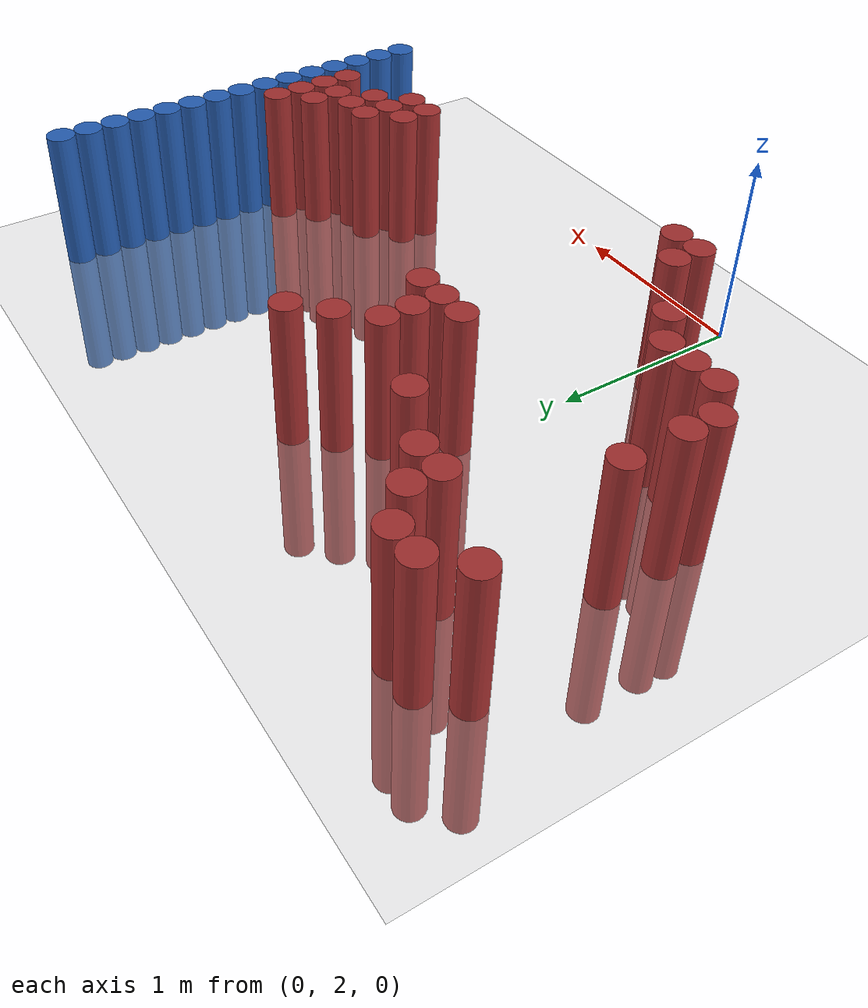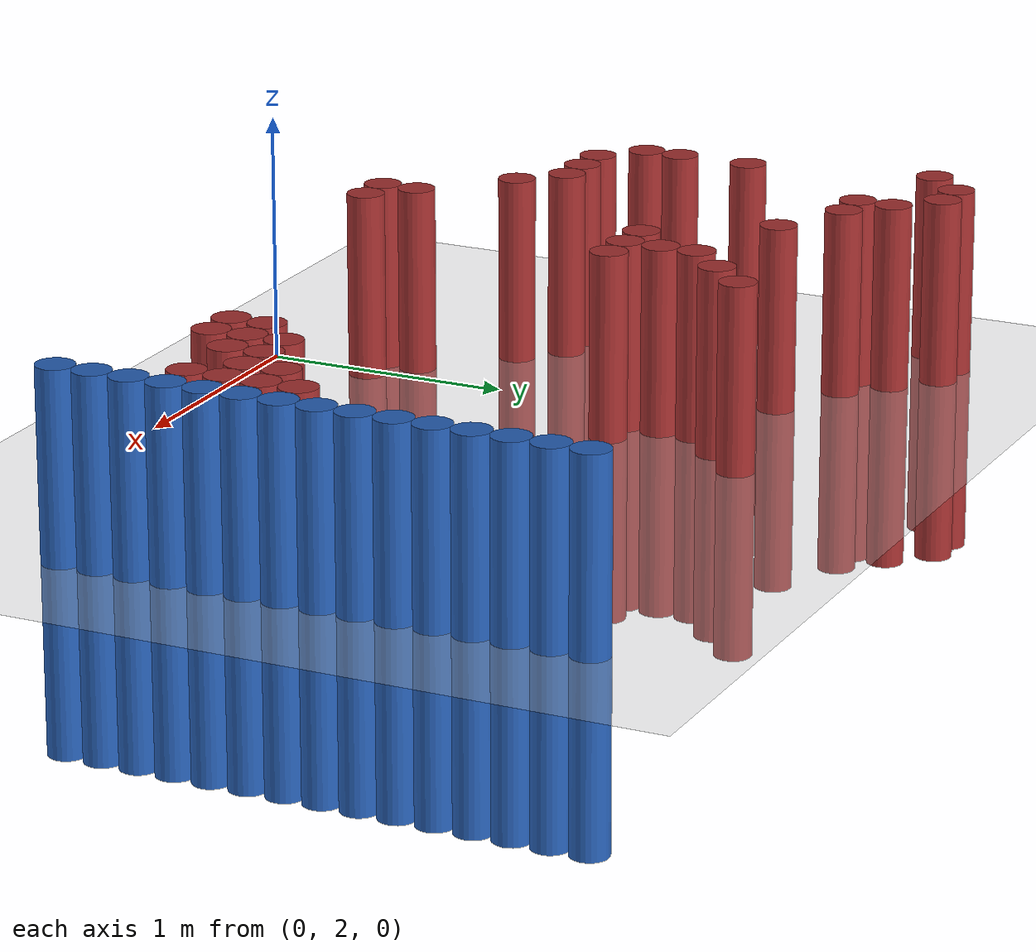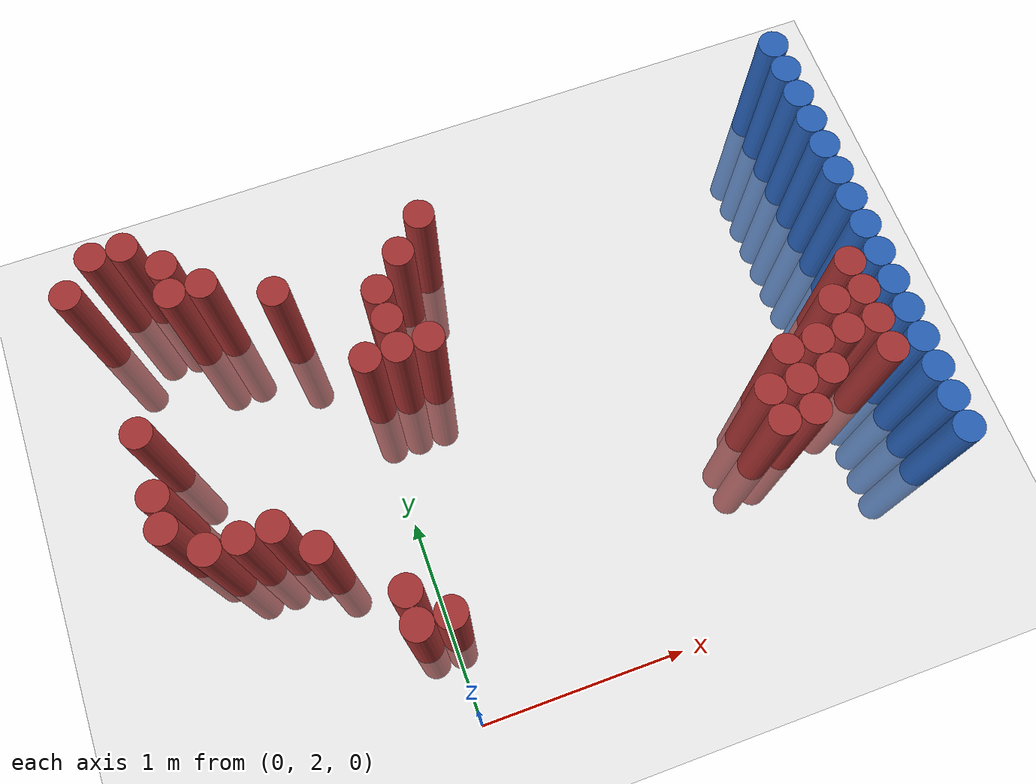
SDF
<sdf version="1.6">
 <world name="default">
  <model name="ground_plane">
   <static>1</static>
   <link name="link">
    <collision name="collision">
     <geometry><plane><normal>0 0 1</normal><size>100 100</size></plane></geometry>
     <surface><friction><ode><mu>100</mu><mu2>50</mu2></ode></friction></surface>
    </collision>
    <visual name="visual">
     <cast_shadows>0</cast_shadows>
     <geometry><plane><normal>0 0 1</normal><size>100 100</size></plane></geometry>
     <material>
      <script><uri>file://media/materials/scripts/gazebo.material</uri><name>Gazebo/Grey</name></script>
     </material>
    </visual>
   </link>
  </model>
  <model name="unit_cylinder_151">
   <static>1</static>
   <pose>-1.175000 4.375000 0.000000 0.000000 0.000000 0.000000</pose>
   <link name="link">
    <inertial>
     <mass>1</mass>
     <inertia><ixx>0.145833</ixx><ixy>0</ixy><ixz>0</ixz><iyy>0.145833</iyy><iyz>0</iyz><izz>0.125</izz></inertia>
    </inertial>
    <collision name="collision">
     <geometry><cylinder><radius>0.075000</radius><length>1.5</length></cylinder></geometry>
    </collision>
    <visual name="visual">
     <geometry><cylinder><radius>0.075000</radius><length>1.5</length></cylinder></geometry>
     <material>
      <ambient>0.648000 0.192000 0.192000 1</ambient>
      <diffuse>0.648000 0.192000 0.192000 1</diffuse>
     </material>
     <material>
      <script><name>Gazebo/Grey</name><uri>file://media/materials/scripts/gazebo.material</uri></script>
     </material>
    </visual>
   </link>
  </model>
  <model name="unit_cylinder_152">
   <static>1</static>
   <pose>-1.025000 3.175000 0.000000 0.000000 0.000000 0.000000</pose>
   <link name="link">
    <inertial>
     <mass>1</mass>
     <inertia><ixx>0.145833</ixx><ixy>0</ixy><ixz>0</ixz><iyy>0.145833</iyy><iyz>0</iyz><izz>0.125</izz></inertia>
    </inertial>
    <collision name="collision">
     <geometry><cylinder><radius>0.075000</radius><length>1.5</length></cylinder></geometry>
    </collision>
    <visual name="visual">
     <geometry><cylinder><radius>0.075000</radius><length>1.5</length></cylinder></geometry>
     <material>
      <ambient>0.648000 0.192000 0.192000 1</ambient>
      <diffuse>0.648000 0.192000 0.192000 1</diffuse>
     </material>
     <material>
      <script><name>Gazebo/Grey</name><uri>file://media/materials/scripts/gazebo.material</uri></script>
     </material>
    </visual>
   </link>
  </model>
  <model name="unit_cylinder_153">
   <static>1</static>
   <pose>-1.025000 3.325000 0.000000 0.000000 0.000000 0.000000</pose>
   <link name="link">
    <inertial>
     <mass>1</mass>
     <inertia><ixx>0.145833</ixx><ixy>0</ixy><ixz>0</ixz><iyy>0.145833</iyy><iyz>0</iyz><izz>0.125</izz></inertia>
    </inertial>
    <collision name="collision">
     <geometry><cylinder><radius>0.075000</radius><length>1.5</length></cylinder></geometry>
    </collision>
    <visual name="visual">
     <geometry><cylinder><radius>0.075000</radius><length>1.5</length></cylinder></geometry>
     <material>
      <ambient>0.648000 0.192000 0.192000 1</ambient>
      <diffuse>0.648000 0.192000 0.192000 1</diffuse>
     </material>
     <material>
      <script><name>Gazebo/Grey</name><uri>file://media/materials/scripts/gazebo.material</uri></script>
     </material>
    </visual>
   </link>
  </model>
  <model name="unit_cylinder_154">
   <static>1</static>
   <pose>-1.025000 3.625000 0.000000 0.000000 0.000000 0.000000</pose>
   <link name="link">
    <inertial>
     <mass>1</mass>
     <inertia><ixx>0.145833</ixx><ixy>0</ixy><ixz>0</ixz><iyy>0.145833</iyy><iyz>0</iyz><izz>0.125</izz></inertia>
    </inertial>
    <collision name="collision">
     <geometry><cylinder><radius>0.075000</radius><length>1.5</length></cylinder></geometry>
    </collision>
    <visual name="visual">
     <geometry><cylinder><radius>0.075000</radius><length>1.5</length></cylinder></geometry>
     <material>
      <ambient>0.648000 0.192000 0.192000 1</ambient>
      <diffuse>0.648000 0.192000 0.192000 1</diffuse>
     </material>
     <material>
      <script><name>Gazebo/Grey</name><uri>file://media/materials/scripts/gazebo.material</uri></script>
     </material>
    </visual>
   </link>
  </model>
  <model name="unit_cylinder_155">
   <static>1</static>
   <pose>-1.025000 4.525000 0.000000 0.000000 0.000000 0.000000</pose>
   <link name="link">
    <inertial>
     <mass>1</mass>
     <inertia><ixx>0.145833</ixx><ixy>0</ixy><ixz>0</ixz><iyy>0.145833</iyy><iyz>0</iyz><izz>0.125</izz></inertia>
    </inertial>
    <collision name="collision">
     <geometry><cylinder><radius>0.075000</radius><length>1.5</length></cylinder></geometry>
    </collision>
    <visual name="visual">
     <geometry><cylinder><radius>0.075000</radius><length>1.5</length></cylinder></geometry>
     <material>
      <ambient>0.648000 0.192000 0.192000 1</ambient>
      <diffuse>0.648000 0.192000 0.192000 1</diffuse>
     </material>
     <material>
      <script><name>Gazebo/Grey</name><uri>file://media/materials/scripts/gazebo.material</uri></script>
     </material>
    </visual>
   </link>
  </model>
  <model name="unit_cylinder_156">
   <static>1</static>
   <pose>-0.875000 3.025000 0.000000 0.000000 0.000000 0.000000</pose>
   <link name="link">
    <inertial>
     <mass>1</mass>
     <inertia><ixx>0.145833</ixx><ixy>0</ixy><ixz>0</ixz><iyy>0.145833</iyy><iyz>0</iyz><izz>0.125</izz></inertia>
    </inertial>
    <collision name="collision">
     <geometry><cylinder><radius>0.075000</radius><length>1.5</length></cylinder></geometry>
    </collision>
    <visual name="visual">
     <geometry><cylinder><radius>0.075000</radius><length>1.5</length></cylinder></geometry>
     <material>
      <ambient>0.648000 0.192000 0.192000 1</ambient>
      <diffuse>0.648000 0.192000 0.192000 1</diffuse>
     </material>
     <material>
      <script><name>Gazebo/Grey</name><uri>file://media/materials/scripts/gazebo.material</uri></script>
     </material>
    </visual>
   </link>
  </model>
  <model name="unit_cylinder_157">
   <static>1</static>
   <pose>-0.875000 4.525000 0.000000 0.000000 0.000000 0.000000</pose>
   <link name="link">
    <inertial>
     <mass>1</mass>
     <inertia><ixx>0.145833</ixx><ixy>0</ixy><ixz>0</ixz><iyy>0.145833</iyy><iyz>0</iyz><izz>0.125</izz></inertia>
    </inertial>
    <collision name="collision">
     <geometry><cylinder><radius>0.075000</radius><length>1.5</length></cylinder></geometry>
    </collision>
    <visual name="visual">
     <geometry><cylinder><radius>0.075000</radius><length>1.5</length></cylinder></geometry>
     <material>
      <ambient>0.648000 0.192000 0.192000 1</ambient>
      <diffuse>0.648000 0.192000 0.192000 1</diffuse>
     </material>
     <material>
      <script><name>Gazebo/Grey</name><uri>file://media/materials/scripts/gazebo.material</uri></script>
     </material>
    </visual>
   </link>
  </model>
  <model name="unit_cylinder_158">
   <static>1</static>
   <pose>-0.725000 3.025000 0.000000 0.000000 0.000000 0.000000</pose>
   <link name="link">
    <inertial>
     <mass>1</mass>
     <inertia><ixx>0.145833</ixx><ixy>0</ixy><ixz>0</ixz><iyy>0.145833</iyy><iyz>0</iyz><izz>0.125</izz></inertia>
    </inertial>
    <collision name="collision">
     <geometry><cylinder><radius>0.075000</radius><length>1.5</length></cylinder></geometry>
    </collision>
    <visual name="visual">
     <geometry><cylinder><radius>0.075000</radius><length>1.5</length></cylinder></geometry>
     <material>
      <ambient>0.648000 0.192000 0.192000 1</ambient>
      <diffuse>0.648000 0.192000 0.192000 1</diffuse>
     </material>
     <material>
      <script><name>Gazebo/Grey</name><uri>file://media/materials/scripts/gazebo.material</uri></script>
     </material>
    </visual>
   </link>
  </model>
  <model name="unit_cylinder_159">
   <static>1</static>
   <pose>-0.725000 4.225000 0.000000 0.000000 0.000000 0.000000</pose>
   <link name="link">
    <inertial>
     <mass>1</mass>
     <inertia><ixx>0.145833</ixx><ixy>0</ixy><ixz>0</ixz><iyy>0.145833</iyy><iyz>0</iyz><izz>0.125</izz></inertia>
    </inertial>
    <collision name="collision">
     <geometry><cylinder><radius>0.075000</radius><length>1.5</length></cylinder></geometry>
    </collision>
    <visual name="visual">
     <geometry><cylinder><radius>0.075000</radius><length>1.5</length></cylinder></geometry>
     <material>
      <ambient>0.648000 0.192000 0.192000 1</ambient>
      <diffuse>0.648000 0.192000 0.192000 1</diffuse>
     </material>
     <material>
      <script><name>Gazebo/Grey</name><uri>file://media/materials/scripts/gazebo.material</uri></script>
     </material>
    </visual>
   </link>
  </model>
  <model name="unit_cylinder_160">
   <static>1</static>
   <pose>-0.725000 4.375000 0.000000 0.000000 0.000000 0.000000</pose>
   <link name="link">
    <inertial>
     <mass>1</mass>
     <inertia><ixx>0.145833</ixx><ixy>0</ixy><ixz>0</ixz><iyy>0.145833</iyy><iyz>0</iyz><izz>0.125</izz></inertia>
    </inertial>
    <collision name="collision">
     <geometry><cylinder><radius>0.075000</radius><length>1.5</length></cylinder></geometry>
    </collision>
    <visual name="visual">
     <geometry><cylinder><radius>0.075000</radius><length>1.5</length></cylinder></geometry>
     <material>
      <ambient>0.648000 0.192000 0.192000 1</ambient>
      <diffuse>0.648000 0.192000 0.192000 1</diffuse>
     </material>
     <material>
      <script><name>Gazebo/Grey</name><uri>file://media/materials/scripts/gazebo.material</uri></script>
     </material>
    </visual>
   </link>
  </model>
  <model name="unit_cylinder_167">
   <static>1</static>
   <pose>-0.575000 3.025000 0.000000 0.000000 0.000000 0.000000</pose>
   <link name="link">
    <inertial>
     <mass>1</mass>
     <inertia><ixx>0.145833</ixx><ixy>0</ixy><ixz>0</ixz><iyy>0.145833</iyy><iyz>0</iyz><izz>0.125</izz></inertia>
    </inertial>
    <collision name="collision">
     <geometry><cylinder><radius>0.075000</radius><length>1.5</length></cylinder></geometry>
    </collision>
    <visual name="visual">
     <geometry><cylinder><radius>0.075000</radius><length>1.5</length></cylinder></geometry>
     <material>
      <ambient>0.648000 0.192000 0.192000 1</ambient>
      <diffuse>0.648000 0.192000 0.192000 1</diffuse>
     </material>
     <material>
      <script><name>Gazebo/Grey</name><uri>file://media/materials/scripts/gazebo.material</uri></script>
     </material>
    </visual>
   </link>
  </model>
  <model name="unit_cylinder_168">
   <static>1</static>
   <pose>-0.575000 4.225000 0.000000 0.000000 0.000000 0.000000</pose>
   <link name="link">
    <inertial>
     <mass>1</mass>
     <inertia><ixx>0.145833</ixx><ixy>0</ixy><ixz>0</ixz><iyy>0.145833</iyy><iyz>0</iyz><izz>0.125</izz></inertia>
    </inertial>
    <collision name="collision">
     <geometry><cylinder><radius>0.075000</radius><length>1.5</length></cylinder></geometry>
    </collision>
    <visual name="visual">
     <geometry><cylinder><radius>0.075000</radius><length>1.5</length></cylinder></geometry>
     <material>
      <ambient>0.648000 0.192000 0.192000 1</ambient>
      <diffuse>0.648000 0.192000 0.192000 1</diffuse>
     </material>
     <material>
      <script><name>Gazebo/Grey</name><uri>file://media/materials/scripts/gazebo.material</uri></script>
     </material>
    </visual>
   </link>
  </model>
  <model name="unit_cylinder_174">
   <static>1</static>
   <pose>-0.425000 2.875000 0.000000 0.000000 0.000000 0.000000</pose>
   <link name="link">
    <inertial>
     <mass>1</mass>
     <inertia><ixx>0.145833</ixx><ixy>0</ixy><ixz>0</ixz><iyy>0.145833</iyy><iyz>0</iyz><izz>0.125</izz></inertia>
    </inertial>
    <collision name="collision">
     <geometry><cylinder><radius>0.075000</radius><length>1.5</length></cylinder></geometry>
    </collision>
    <visual name="visual">
     <geometry><cylinder><radius>0.075000</radius><length>1.5</length></cylinder></geometry>
     <material>
      <ambient>0.648000 0.192000 0.192000 1</ambient>
      <diffuse>0.648000 0.192000 0.192000 1</diffuse>
     </material>
     <material>
      <script><name>Gazebo/Grey</name><uri>file://media/materials/scripts/gazebo.material</uri></script>
     </material>
    </visual>
   </link>
  </model>
  <model name="unit_cylinder_178">
   <static>1</static>
   <pose>-0.275000 4.075000 0.000000 0.000000 0.000000 0.000000</pose>
   <link name="link">
    <inertial>
     <mass>1</mass>
     <inertia><ixx>0.145833</ixx><ixy>0</ixy><ixz>0</ixz><iyy>0.145833</iyy><iyz>0</iyz><izz>0.125</izz></inertia>
    </inertial>
    <collision name="collision">
     <geometry><cylinder><radius>0.075000</radius><length>1.5</length></cylinder></geometry>
    </collision>
    <visual name="visual">
     <geometry><cylinder><radius>0.075000</radius><length>1.5</length></cylinder></geometry>
     <material>
      <ambient>0.648000 0.192000 0.192000 1</ambient>
      <diffuse>0.648000 0.192000 0.192000 1</diffuse>
     </material>
     <material>
      <script><name>Gazebo/Grey</name><uri>file://media/materials/scripts/gazebo.material</uri></script>
     </material>
    </visual>
   </link>
  </model>
  <model name="unit_cylinder_182">
   <static>1</static>
   <pose>-0.125000 2.425000 0.000000 0.000000 0.000000 0.000000</pose>
   <link name="link">
    <inertial>
     <mass>1</mass>
     <inertia><ixx>0.145833</ixx><ixy>0</ixy><ixz>0</ixz><iyy>0.145833</iyy><iyz>0</iyz><izz>0.125</izz></inertia>
    </inertial>
    <collision name="collision">
     <geometry><cylinder><radius>0.075000</radius><length>1.5</length></cylinder></geometry>
    </collision>
    <visual name="visual">
     <geometry><cylinder><radius>0.075000</radius><length>1.5</length></cylinder></geometry>
     <material>
      <ambient>0.648000 0.192000 0.192000 1</ambient>
      <diffuse>0.648000 0.192000 0.192000 1</diffuse>
     </material>
     <material>
      <script><name>Gazebo/Grey</name><uri>file://media/materials/scripts/gazebo.material</uri></script>
     </material>
    </visual>
   </link>
  </model>
  <model name="unit_cylinder_183">
   <static>1</static>
   <pose>-0.125000 2.575000 0.000000 0.000000 0.000000 0.000000</pose>
   <link name="link">
    <inertial>
     <mass>1</mass>
     <inertia><ixx>0.145833</ixx><ixy>0</ixy><ixz>0</ixz><iyy>0.145833</iyy><iyz>0</iyz><izz>0.125</izz></inertia>
    </inertial>
    <collision name="collision">
     <geometry><cylinder><radius>0.075000</radius><length>1.5</length></cylinder></geometry>
    </collision>
    <visual name="visual">
     <geometry><cylinder><radius>0.075000</radius><length>1.5</length></cylinder></geometry>
     <material>
      <ambient>0.648000 0.192000 0.192000 1</ambient>
      <diffuse>0.648000 0.192000 0.192000 1</diffuse>
     </material>
     <material>
      <script><name>Gazebo/Grey</name><uri>file://media/materials/scripts/gazebo.material</uri></script>
     </material>
    </visual>
   </link>
  </model>
  <model name="unit_cylinder_187">
   <static>1</static>
   <pose>0.025000 2.425000 0.000000 0.000000 0.000000 0.000000</pose>
   <link name="link">
    <inertial>
     <mass>1</mass>
     <inertia><ixx>0.145833</ixx><ixy>0</ixy><ixz>0</ixz><iyy>0.145833</iyy><iyz>0</iyz><izz>0.125</izz></inertia>
    </inertial>
    <collision name="collision">
     <geometry><cylinder><radius>0.075000</radius><length>1.5</length></cylinder></geometry>
    </collision>
    <visual name="visual">
     <geometry><cylinder><radius>0.075000</radius><length>1.5</length></cylinder></geometry>
     <material>
      <ambient>0.648000 0.192000 0.192000 1</ambient>
      <diffuse>0.648000 0.192000 0.192000 1</diffuse>
     </material>
     <material>
      <script><name>Gazebo/Grey</name><uri>file://media/materials/scripts/gazebo.material</uri></script>
     </material>
    </visual>
   </link>
  </model>
  <model name="unit_cylinder_188">
   <static>1</static>
   <pose>0.025000 3.625000 0.000000 0.000000 0.000000 0.000000</pose>
   <link name="link">
    <inertial>
     <mass>1</mass>
     <inertia><ixx>0.145833</ixx><ixy>0</ixy><ixz>0</ixz><iyy>0.145833</iyy><iyz>0</iyz><izz>0.125</izz></inertia>
    </inertial>
    <collision name="collision">
     <geometry><cylinder><radius>0.075000</radius><length>1.5</length></cylinder></geometry>
    </collision>
    <visual name="visual">
     <geometry><cylinder><radius>0.075000</radius><length>1.5</length></cylinder></geometry>
     <material>
      <ambient>0.648000 0.192000 0.192000 1</ambient>
      <diffuse>0.648000 0.192000 0.192000 1</diffuse>
     </material>
     <material>
      <script><name>Gazebo/Grey</name><uri>file://media/materials/scripts/gazebo.material</uri></script>
     </material>
    </visual>
   </link>
  </model>
  <model name="unit_cylinder_192">
   <static>1</static>
   <pose>0.175000 3.625000 0.000000 0.000000 0.000000 0.000000</pose>
   <link name="link">
    <inertial>
     <mass>1</mass>
     <inertia><ixx>0.145833</ixx><ixy>0</ixy><ixz>0</ixz><iyy>0.145833</iyy><iyz>0</iyz><izz>0.125</izz></inertia>
    </inertial>
    <collision name="collision">
     <geometry><cylinder><radius>0.075000</radius><length>1.5</length></cylinder></geometry>
    </collision>
    <visual name="visual">
     <geometry><cylinder><radius>0.075000</radius><length>1.5</length></cylinder></geometry>
     <material>
      <ambient>0.648000 0.192000 0.192000 1</ambient>
      <diffuse>0.648000 0.192000 0.192000 1</diffuse>
     </material>
     <material>
      <script><name>Gazebo/Grey</name><uri>file://media/materials/scripts/gazebo.material</uri></script>
     </material>
    </visual>
   </link>
  </model>
  <model name="unit_cylinder_193">
   <static>1</static>
   <pose>0.175000 3.775000 0.000000 0.000000 0.000000 0.000000</pose>
   <link name="link">
    <inertial>
     <mass>1</mass>
     <inertia><ixx>0.145833</ixx><ixy>0</ixy><ixz>0</ixz><iyy>0.145833</iyy><iyz>0</iyz><izz>0.125</izz></inertia>
    </inertial>
    <collision name="collision">
     <geometry><cylinder><radius>0.075000</radius><length>1.5</length></cylinder></geometry>
    </collision>
    <visual name="visual">
     <geometry><cylinder><radius>0.075000</radius><length>1.5</length></cylinder></geometry>
     <material>
      <ambient>0.648000 0.192000 0.192000 1</ambient>
      <diffuse>0.648000 0.192000 0.192000 1</diffuse>
     </material>
     <material>
      <script><name>Gazebo/Grey</name><uri>file://media/materials/scripts/gazebo.material</uri></script>
     </material>
    </visual>
   </link>
  </model>
  <model name="unit_cylinder_194">
   <static>1</static>
   <pose>0.175000 3.925000 0.000000 0.000000 0.000000 0.000000</pose>
   <link name="link">
    <inertial>
     <mass>1</mass>
     <inertia><ixx>0.145833</ixx><ixy>0</ixy><ixz>0</ixz><iyy>0.145833</iyy><iyz>0</iyz><izz>0.125</izz></inertia>
    </inertial>
    <collision name="collision">
     <geometry><cylinder><radius>0.075000</radius><length>1.5</length></cylinder></geometry>
    </collision>
    <visual name="visual">
     <geometry><cylinder><radius>0.075000</radius><length>1.5</length></cylinder></geometry>
     <material>
      <ambient>0.648000 0.192000 0.192000 1</ambient>
      <diffuse>0.648000 0.192000 0.192000 1</diffuse>
     </material>
     <material>
      <script><name>Gazebo/Grey</name><uri>file://media/materials/scripts/gazebo.material</uri></script>
     </material>
    </visual>
   </link>
  </model>
  <model name="unit_cylinder_195">
   <static>1</static>
   <pose>0.325000 3.625000 0.000000 0.000000 0.000000 0.000000</pose>
   <link name="link">
    <inertial>
     <mass>1</mass>
     <inertia><ixx>0.145833</ixx><ixy>0</ixy><ixz>0</ixz><iyy>0.145833</iyy><iyz>0</iyz><izz>0.125</izz></inertia>
    </inertial>
    <collision name="collision">
     <geometry><cylinder><radius>0.075000</radius><length>1.5</length></cylinder></geometry>
    </collision>
    <visual name="visual">
     <geometry><cylinder><radius>0.075000</radius><length>1.5</length></cylinder></geometry>
     <material>
      <ambient>0.648000 0.192000 0.192000 1</ambient>
      <diffuse>0.648000 0.192000 0.192000 1</diffuse>
     </material>
     <material>
      <script><name>Gazebo/Grey</name><uri>file://media/materials/scripts/gazebo.material</uri></script>
     </material>
    </visual>
   </link>
  </model>
  <model name="unit_cylinder_196">
   <static>1</static>
   <pose>0.325000 4.075000 0.000000 0.000000 0.000000 0.000000</pose>
   <link name="link">
    <inertial>
     <mass>1</mass>
     <inertia><ixx>0.145833</ixx><ixy>0</ixy><ixz>0</ixz><iyy>0.145833</iyy><iyz>0</iyz><izz>0.125</izz></inertia>
    </inertial>
    <collision name="collision">
     <geometry><cylinder><radius>0.075000</radius><length>1.5</length></cylinder></geometry>
    </collision>
    <visual name="visual">
     <geometry><cylinder><radius>0.075000</radius><length>1.5</length></cylinder></geometry>
     <material>
      <ambient>0.648000 0.192000 0.192000 1</ambient>
      <diffuse>0.648000 0.192000 0.192000 1</diffuse>
     </material>
     <material>
      <script><name>Gazebo/Grey</name><uri>file://media/materials/scripts/gazebo.material</uri></script>
     </material>
    </visual>
   </link>
  </model>
  <model name="unit_cylinder_197">
   <static>1</static>
   <pose>0.475000 4.225000 0.000000 0.000000 0.000000 0.000000</pose>
   <link name="link">
    <inertial>
     <mass>1</mass>
     <inertia><ixx>0.145833</ixx><ixy>0</ixy><ixz>0</ixz><iyy>0.145833</iyy><iyz>0</iyz><izz>0.125</izz></inertia>
    </inertial>
    <collision name="collision">
     <geometry><cylinder><radius>0.075000</radius><length>1.5</length></cylinder></geometry>
    </collision>
    <visual name="visual">
     <geometry><cylinder><radius>0.075000</radius><length>1.5</length></cylinder></geometry>
     <material>
      <ambient>0.648000 0.192000 0.192000 1</ambient>
      <diffuse>0.648000 0.192000 0.192000 1</diffuse>
     </material>
     <material>
      <script><name>Gazebo/Grey</name><uri>file://media/materials/scripts/gazebo.material</uri></script>
     </material>
    </visual>
   </link>
  </model>
  <model name="unit_cylinder_204">
   <static>1</static>
   <pose>1.675000 2.725000 0.000000 0.000000 0.000000 0.000000</pose>
   <link name="link">
    <inertial>
     <mass>1</mass>
     <inertia><ixx>0.145833</ixx><ixy>0</ixy><ixz>0</ixz><iyy>0.145833</iyy><iyz>0</iyz><izz>0.125</izz></inertia>
    </inertial>
    <collision name="collision">
     <geometry><cylinder><radius>0.075000</radius><length>1.5</length></cylinder></geometry>
    </collision>
    <visual name="visual">
     <geometry><cylinder><radius>0.075000</radius><length>1.5</length></cylinder></geometry>
     <material>
      <ambient>0.648000 0.192000 0.192000 1</ambient>
      <diffuse>0.648000 0.192000 0.192000 1</diffuse>
     </material>
     <material>
      <script><name>Gazebo/Grey</name><uri>file://media/materials/scripts/gazebo.material</uri></script>
     </material>
    </visual>
   </link>
  </model>
  <model name="unit_cylinder_205">
   <static>1</static>
   <pose>1.675000 2.875000 0.000000 0.000000 0.000000 0.000000</pose>
   <link name="link">
    <inertial>
     <mass>1</mass>
     <inertia><ixx>0.145833</ixx><ixy>0</ixy><ixz>0</ixz><iyy>0.145833</iyy><iyz>0</iyz><izz>0.125</izz></inertia>
    </inertial>
    <collision name="collision">
     <geometry><cylinder><radius>0.075000</radius><length>1.5</length></cylinder></geometry>
    </collision>
    <visual name="visual">
     <geometry><cylinder><radius>0.075000</radius><length>1.5</length></cylinder></geometry>
     <material>
      <ambient>0.648000 0.192000 0.192000 1</ambient>
      <diffuse>0.648000 0.192000 0.192000 1</diffuse>
     </material>
     <material>
      <script><name>Gazebo/Grey</name><uri>file://media/materials/scripts/gazebo.material</uri></script>
     </material>
    </visual>
   </link>
  </model>
  <model name="unit_cylinder_206">
   <static>1</static>
   <pose>1.825000 2.725000 0.000000 0.000000 0.000000 0.000000</pose>
   <link name="link">
    <inertial>
     <mass>1</mass>
     <inertia><ixx>0.145833</ixx><ixy>0</ixy><ixz>0</ixz><iyy>0.145833</iyy><iyz>0</iyz><izz>0.125</izz></inertia>
    </inertial>
    <collision name="collision">
     <geometry><cylinder><radius>0.075000</radius><length>1.5</length></cylinder></geometry>
    </collision>
    <visual name="visual">
     <geometry><cylinder><radius>0.075000</radius><length>1.5</length></cylinder></geometry>
     <material>
      <ambient>0.648000 0.192000 0.192000 1</ambient>
      <diffuse>0.648000 0.192000 0.192000 1</diffuse>
     </material>
     <material>
      <script><name>Gazebo/Grey</name><uri>file://media/materials/scripts/gazebo.material</uri></script>
     </material>
    </visual>
   </link>
  </model>
  <model name="unit_cylinder_207">
   <static>1</static>
   <pose>1.825000 2.875000 0.000000 0.000000 0.000000 0.000000</pose>
   <link name="link">
    <inertial>
     <mass>1</mass>
     <inertia><ixx>0.145833</ixx><ixy>0</ixy><ixz>0</ixz><iyy>0.145833</iyy><iyz>0</iyz><izz>0.125</izz></inertia>
    </inertial>
    <collision name="collision">
     <geometry><cylinder><radius>0.075000</radius><length>1.5</length></cylinder></geometry>
    </collision>
    <visual name="visual">
     <geometry><cylinder><radius>0.075000</radius><length>1.5</length></cylinder></geometry>
     <material>
      <ambient>0.648000 0.192000 0.192000 1</ambient>
      <diffuse>0.648000 0.192000 0.192000 1</diffuse>
     </material>
     <material>
      <script><name>Gazebo/Grey</name><uri>file://media/materials/scripts/gazebo.material</uri></script>
     </material>
    </visual>
   </link>
  </model>
  <model name="unit_cylinder_208">
   <static>1</static>
   <pose>1.825000 3.025000 0.000000 0.000000 0.000000 0.000000</pose>
   <link name="link">
    <inertial>
     <mass>1</mass>
     <inertia><ixx>0.145833</ixx><ixy>0</ixy><ixz>0</ixz><iyy>0.145833</iyy><iyz>0</iyz><izz>0.125</izz></inertia>
    </inertial>
    <collision name="collision">
     <geometry><cylinder><radius>0.075000</radius><length>1.5</length></cylinder></geometry>
    </collision>
    <visual name="visual">
     <geometry><cylinder><radius>0.075000</radius><length>1.5</length></cylinder></geometry>
     <material>
      <ambient>0.648000 0.192000 0.192000 1</ambient>
      <diffuse>0.648000 0.192000 0.192000 1</diffuse>
     </material>
     <material>
      <script><name>Gazebo/Grey</name><uri>file://media/materials/scripts/gazebo.material</uri></script>
     </material>
    </visual>
   </link>
  </model>
  <model name="unit_cylinder_211">
   <static>1</static>
   <pose>1.975000 2.875000 0.000000 0.000000 0.000000 0.000000</pose>
   <link name="link">
    <inertial>
     <mass>1</mass>
     <inertia><ixx>0.145833</ixx><ixy>0</ixy><ixz>0</ixz><iyy>0.145833</iyy><iyz>0</iyz><izz>0.125</izz></inertia>
    </inertial>
    <collision name="collision">
     <geometry><cylinder><radius>0.075000</radius><length>1.5</length></cylinder></geometry>
    </collision>
    <visual name="visual">
     <geometry><cylinder><radius>0.075000</radius><length>1.5</length></cylinder></geometry>
     <material>
      <ambient>0.648000 0.192000 0.192000 1</ambient>
      <diffuse>0.648000 0.192000 0.192000 1</diffuse>
     </material>
     <material>
      <script><name>Gazebo/Grey</name><uri>file://media/materials/scripts/gazebo.material</uri></script>
     </material>
    </visual>
   </link>
  </model>
  <model name="unit_cylinder_212">
   <static>1</static>
   <pose>1.975000 3.025000 0.000000 0.000000 0.000000 0.000000</pose>
   <link name="link">
    <inertial>
     <mass>1</mass>
     <inertia><ixx>0.145833</ixx><ixy>0</ixy><ixz>0</ixz><iyy>0.145833</iyy><iyz>0</iyz><izz>0.125</izz></inertia>
    </inertial>
    <collision name="collision">
     <geometry><cylinder><radius>0.075000</radius><length>1.5</length></cylinder></geometry>
    </collision>
    <visual name="visual">
     <geometry><cylinder><radius>0.075000</radius><length>1.5</length></cylinder></geometry>
     <material>
      <ambient>0.648000 0.192000 0.192000 1</ambient>
      <diffuse>0.648000 0.192000 0.192000 1</diffuse>
     </material>
     <material>
      <script><name>Gazebo/Grey</name><uri>file://media/materials/scripts/gazebo.material</uri></script>
     </material>
    </visual>
   </link>
  </model>
  <model name="unit_cylinder_215">
   <static>1</static>
   <pose>2.125000 3.025000 0.000000 0.000000 0.000000 0.000000</pose>
   <link name="link">
    <inertial>
     <mass>1</mass>
     <inertia><ixx>0.145833</ixx><ixy>0</ixy><ixz>0</ixz><iyy>0.145833</iyy><iyz>0</iyz><izz>0.125</izz></inertia>
    </inertial>
    <collision name="collision">
     <geometry><cylinder><radius>0.075000</radius><length>1.5</length></cylinder></geometry>
    </collision>
    <visual name="visual">
     <geometry><cylinder><radius>0.075000</radius><length>1.5</length></cylinder></geometry>
     <material>
      <ambient>0.648000 0.192000 0.192000 1</ambient>
      <diffuse>0.648000 0.192000 0.192000 1</diffuse>
     </material>
     <material>
      <script><name>Gazebo/Grey</name><uri>file://media/materials/scripts/gazebo.material</uri></script>
     </material>
    </visual>
   </link>
  </model>
  <model name="unit_cylinder_216">
   <static>1</static>
   <pose>2.125000 3.175000 0.000000 0.000000 0.000000 0.000000</pose>
   <link name="link">
    <inertial>
     <mass>1</mass>
     <inertia><ixx>0.145833</ixx><ixy>0</ixy><ixz>0</ixz><iyy>0.145833</iyy><iyz>0</iyz><izz>0.125</izz></inertia>
    </inertial>
    <collision name="collision">
     <geometry><cylinder><radius>0.075000</radius><length>1.5</length></cylinder></geometry>
    </collision>
    <visual name="visual">
     <geometry><cylinder><radius>0.075000</radius><length>1.5</length></cylinder></geometry>
     <material>
      <ambient>0.648000 0.192000 0.192000 1</ambient>
      <diffuse>0.648000 0.192000 0.192000 1</diffuse>
     </material>
     <material>
      <script><name>Gazebo/Grey</name><uri>file://media/materials/scripts/gazebo.material</uri></script>
     </material>
    </visual>
   </link>
  </model>
  <model name="unit_cylinder_227">
   <static>1</static>
   <pose>2.275000 2.875000 0.000000 0.000000 0.000000 0.000000</pose>
   <link name="link">
    <inertial>
     <mass>1</mass>
     <inertia><ixx>0.145833</ixx><ixy>0</ixy><ixz>0</ixz><iyy>0.145833</iyy><iyz>0</iyz><izz>0.125</izz></inertia>
    </inertial>
    <collision name="collision">
     <geometry><cylinder><radius>0.075000</radius><length>1.5</length></cylinder></geometry>
    </collision>
    <visual name="visual">
     <geometry><cylinder><radius>0.075000</radius><length>1.5</length></cylinder></geometry>
     <material>
      <ambient>0.648000 0.192000 0.192000 1</ambient>
      <diffuse>0.648000 0.192000 0.192000 1</diffuse>
     </material>
     <material>
      <script><name>Gazebo/Grey</name><uri>file://media/materials/scripts/gazebo.material</uri></script>
     </material>
    </visual>
   </link>
  </model>
  <model name="unit_cylinder_228">
   <static>1</static>
   <pose>2.275000 3.025000 0.000000 0.000000 0.000000 0.000000</pose>
   <link name="link">
    <inertial>
     <mass>1</mass>
     <inertia><ixx>0.145833</ixx><ixy>0</ixy><ixz>0</ixz><iyy>0.145833</iyy><iyz>0</iyz><izz>0.125</izz></inertia>
    </inertial>
    <collision name="collision">
     <geometry><cylinder><radius>0.075000</radius><length>1.5</length></cylinder></geometry>
    </collision>
    <visual name="visual">
     <geometry><cylinder><radius>0.075000</radius><length>1.5</length></cylinder></geometry>
     <material>
      <ambient>0.648000 0.192000 0.192000 1</ambient>
      <diffuse>0.648000 0.192000 0.192000 1</diffuse>
     </material>
     <material>
      <script><name>Gazebo/Grey</name><uri>file://media/materials/scripts/gazebo.material</uri></script>
     </material>
    </visual>
   </link>
  </model>
  <model name="unit_cylinder_229">
   <static>1</static>
   <pose>2.275000 3.175000 0.000000 0.000000 0.000000 0.000000</pose>
   <link name="link">
    <inertial>
     <mass>1</mass>
     <inertia><ixx>0.145833</ixx><ixy>0</ixy><ixz>0</ixz><iyy>0.145833</iyy><iyz>0</iyz><izz>0.125</izz></inertia>
    </inertial>
    <collision name="collision">
     <geometry><cylinder><radius>0.075000</radius><length>1.5</length></cylinder></geometry>
    </collision>
    <visual name="visual">
     <geometry><cylinder><radius>0.075000</radius><length>1.5</length></cylinder></geometry>
     <material>
      <ambient>0.648000 0.192000 0.192000 1</ambient>
      <diffuse>0.648000 0.192000 0.192000 1</diffuse>
     </material>
     <material>
      <script><name>Gazebo/Grey</name><uri>file://media/materials/scripts/gazebo.material</uri></script>
     </material>
    </visual>
   </link>
  </model>
  <model name="unit_cylinder_230">
   <static>1</static>
   <pose>2.275000 3.325000 0.000000 0.000000 0.000000 0.000000</pose>
   <link name="link">
    <inertial>
     <mass>1</mass>
     <inertia><ixx>0.145833</ixx><ixy>0</ixy><ixz>0</ixz><iyy>0.145833</iyy><iyz>0</iyz><izz>0.125</izz></inertia>
    </inertial>
    <collision name="collision">
     <geometry><cylinder><radius>0.075000</radius><length>1.5</length></cylinder></geometry>
    </collision>
    <visual name="visual">
     <geometry><cylinder><radius>0.075000</radius><length>1.5</length></cylinder></geometry>
     <material>
      <ambient>0.648000 0.192000 0.192000 1</ambient>
      <diffuse>0.648000 0.192000 0.192000 1</diffuse>
     </material>
     <material>
      <script><name>Gazebo/Grey</name><uri>file://media/materials/scripts/gazebo.material</uri></script>
     </material>
    </visual>
   </link>
  </model>
  <model name="unit_cylinder_246">
   <static>1</static>
   <pose>2.425000 2.425000 0.000000 0.000000 0.000000 0.000000</pose>
   <link name="link">
    <inertial>
     <mass>1</mass>
     <inertia><ixx>0.145833</ixx><ixy>0</ixy><ixz>0</ixz><iyy>0.145833</iyy><iyz>0</iyz><izz>0.125</izz></inertia>
    </inertial>
    <collision name="collision">
     <geometry><cylinder><radius>0.075000</radius><length>1.5</length></cylinder></geometry>
    </collision>
    <visual name="visual">
     <geometry><cylinder><radius>0.075000</radius><length>1.5</length></cylinder></geometry>
     <material>
      <ambient>0.152000 0.379000 0.720000 1</ambient>
      <diffuse>0.152000 0.379000 0.720000 1</diffuse>
     </material>
     <material>
      <script><name>Gazebo/Grey</name><uri>file://media/materials/scripts/gazebo.material</uri></script>
     </material>
    </visual>
   </link>
  </model>
  <model name="unit_cylinder_247">
   <static>1</static>
   <pose>2.425000 2.575000 0.000000 0.000000 0.000000 0.000000</pose>
   <link name="link">
    <inertial>
     <mass>1</mass>
     <inertia><ixx>0.145833</ixx><ixy>0</ixy><ixz>0</ixz><iyy>0.145833</iyy><iyz>0</iyz><izz>0.125</izz></inertia>
    </inertial>
    <collision name="collision">
     <geometry><cylinder><radius>0.075000</radius><length>1.5</length></cylinder></geometry>
    </collision>
    <visual name="visual">
     <geometry><cylinder><radius>0.075000</radius><length>1.5</length></cylinder></geometry>
     <material>
      <ambient>0.152000 0.379000 0.720000 1</ambient>
      <diffuse>0.152000 0.379000 0.720000 1</diffuse>
     </material>
     <material>
      <script><name>Gazebo/Grey</name><uri>file://media/materials/scripts/gazebo.material</uri></script>
     </material>
    </visual>
   </link>
  </model>
  <model name="unit_cylinder_248">
   <static>1</static>
   <pose>2.425000 2.725000 0.000000 0.000000 0.000000 0.000000</pose>
   <link name="link">
    <inertial>
     <mass>1</mass>
     <inertia><ixx>0.145833</ixx><ixy>0</ixy><ixz>0</ixz><iyy>0.145833</iyy><iyz>0</iyz><izz>0.125</izz></inertia>
    </inertial>
    <collision name="collision">
     <geometry><cylinder><radius>0.075000</radius><length>1.5</length></cylinder></geometry>
    </collision>
    <visual name="visual">
     <geometry><cylinder><radius>0.075000</radius><length>1.5</length></cylinder></geometry>
     <material>
      <ambient>0.152000 0.379000 0.720000 1</ambient>
      <diffuse>0.152000 0.379000 0.720000 1</diffuse>
     </material>
     <material>
      <script><name>Gazebo/Grey</name><uri>file://media/materials/scripts/gazebo.material</uri></script>
     </material>
    </visual>
   </link>
  </model>
  <model name="unit_cylinder_249">
   <static>1</static>
   <pose>2.425000 2.875000 0.000000 0.000000 0.000000 0.000000</pose>
   <link name="link">
    <inertial>
     <mass>1</mass>
     <inertia><ixx>0.145833</ixx><ixy>0</ixy><ixz>0</ixz><iyy>0.145833</iyy><iyz>0</iyz><izz>0.125</izz></inertia>
    </inertial>
    <collision name="collision">
     <geometry><cylinder><radius>0.075000</radius><length>1.5</length></cylinder></geometry>
    </collision>
    <visual name="visual">
     <geometry><cylinder><radius>0.075000</radius><length>1.5</length></cylinder></geometry>
     <material>
      <ambient>0.152000 0.379000 0.720000 1</ambient>
      <diffuse>0.152000 0.379000 0.720000 1</diffuse>
     </material>
     <material>
      <script><name>Gazebo/Grey</name><uri>file://media/materials/scripts/gazebo.material</uri></script>
     </material>
    </visual>
   </link>
  </model>
  <model name="unit_cylinder_250">
   <static>1</static>
   <pose>2.425000 3.025000 0.000000 0.000000 0.000000 0.000000</pose>
   <link name="link">
    <inertial>
     <mass>1</mass>
     <inertia><ixx>0.145833</ixx><ixy>0</ixy><ixz>0</ixz><iyy>0.145833</iyy><iyz>0</iyz><izz>0.125</izz></inertia>
    </inertial>
    <collision name="collision">
     <geometry><cylinder><radius>0.075000</radius><length>1.5</length></cylinder></geometry>
    </collision>
    <visual name="visual">
     <geometry><cylinder><radius>0.075000</radius><length>1.5</length></cylinder></geometry>
     <material>
      <ambient>0.152000 0.379000 0.720000 1</ambient>
      <diffuse>0.152000 0.379000 0.720000 1</diffuse>
     </material>
     <material>
      <script><name>Gazebo/Grey</name><uri>file://media/materials/scripts/gazebo.material</uri></script>
     </material>
    </visual>
   </link>
  </model>
  <model name="unit_cylinder_251">
   <static>1</static>
   <pose>2.425000 3.175000 0.000000 0.000000 0.000000 0.000000</pose>
   <link name="link">
    <inertial>
     <mass>1</mass>
     <inertia><ixx>0.145833</ixx><ixy>0</ixy><ixz>0</ixz><iyy>0.145833</iyy><iyz>0</iyz><izz>0.125</izz></inertia>
    </inertial>
    <collision name="collision">
     <geometry><cylinder><radius>0.075000</radius><length>1.5</length></cylinder></geometry>
    </collision>
    <visual name="visual">
     <geometry><cylinder><radius>0.075000</radius><length>1.5</length></cylinder></geometry>
     <material>
      <ambient>0.152000 0.379000 0.720000 1</ambient>
      <diffuse>0.152000 0.379000 0.720000 1</diffuse>
     </material>
     <material>
      <script><name>Gazebo/Grey</name><uri>file://media/materials/scripts/gazebo.material</uri></script>
     </material>
    </visual>
   </link>
  </model>
  <model name="unit_cylinder_252">
   <static>1</static>
   <pose>2.425000 3.325000 0.000000 0.000000 0.000000 0.000000</pose>
   <link name="link">
    <inertial>
     <mass>1</mass>
     <inertia><ixx>0.145833</ixx><ixy>0</ixy><ixz>0</ixz><iyy>0.145833</iyy><iyz>0</iyz><izz>0.125</izz></inertia>
    </inertial>
    <collision name="collision">
     <geometry><cylinder><radius>0.075000</radius><length>1.5</length></cylinder></geometry>
    </collision>
    <visual name="visual">
     <geometry><cylinder><radius>0.075000</radius><length>1.5</length></cylinder></geometry>
     <material>
      <ambient>0.152000 0.379000 0.720000 1</ambient>
      <diffuse>0.152000 0.379000 0.720000 1</diffuse>
     </material>
     <material>
      <script><name>Gazebo/Grey</name><uri>file://media/materials/scripts/gazebo.material</uri></script>
     </material>
    </visual>
   </link>
  </model>
  <model name="unit_cylinder_253">
   <static>1</static>
   <pose>2.425000 3.475000 0.000000 0.000000 0.000000 0.000000</pose>
   <link name="link">
    <inertial>
     <mass>1</mass>
     <inertia><ixx>0.145833</ixx><ixy>0</ixy><ixz>0</ixz><iyy>0.145833</iyy><iyz>0</iyz><izz>0.125</izz></inertia>
    </inertial>
    <collision name="collision">
     <geometry><cylinder><radius>0.075000</radius><length>1.5</length></cylinder></geometry>
    </collision>
    <visual name="visual">
     <geometry><cylinder><radius>0.075000</radius><length>1.5</length></cylinder></geometry>
     <material>
      <ambient>0.152000 0.379000 0.720000 1</ambient>
      <diffuse>0.152000 0.379000 0.720000 1</diffuse>
     </material>
     <material>
      <script><name>Gazebo/Grey</name><uri>file://media/materials/scripts/gazebo.material</uri></script>
     </material>
    </visual>
   </link>
  </model>
  <model name="unit_cylinder_254">
   <static>1</static>
   <pose>2.425000 3.625000 0.000000 0.000000 0.000000 0.000000</pose>
   <link name="link">
    <inertial>
     <mass>1</mass>
     <inertia><ixx>0.145833</ixx><ixy>0</ixy><ixz>0</ixz><iyy>0.145833</iyy><iyz>0</iyz><izz>0.125</izz></inertia>
    </inertial>
    <collision name="collision">
     <geometry><cylinder><radius>0.075000</radius><length>1.5</length></cylinder></geometry>
    </collision>
    <visual name="visual">
     <geometry><cylinder><radius>0.075000</radius><length>1.5</length></cylinder></geometry>
     <material>
      <ambient>0.152000 0.379000 0.720000 1</ambient>
      <diffuse>0.152000 0.379000 0.720000 1</diffuse>
     </material>
     <material>
      <script><name>Gazebo/Grey</name><uri>file://media/materials/scripts/gazebo.material</uri></script>
     </material>
    </visual>
   </link>
  </model>
  <model name="unit_cylinder_255">
   <static>1</static>
   <pose>2.425000 3.775000 0.000000 0.000000 0.000000 0.000000</pose>
   <link name="link">
    <inertial>
     <mass>1</mass>
     <inertia><ixx>0.145833</ixx><ixy>0</ixy><ixz>0</ixz><iyy>0.145833</iyy><iyz>0</iyz><izz>0.125</izz></inertia>
    </inertial>
    <collision name="collision">
     <geometry><cylinder><radius>0.075000</radius><length>1.5</length></cylinder></geometry>
    </collision>
    <visual name="visual">
     <geometry><cylinder><radius>0.075000</radius><length>1.5</length></cylinder></geometry>
     <material>
      <ambient>0.152000 0.379000 0.720000 1</ambient>
      <diffuse>0.152000 0.379000 0.720000 1</diffuse>
     </material>
     <material>
      <script><name>Gazebo/Grey</name><uri>file://media/materials/scripts/gazebo.material</uri></script>
     </material>
    </visual>
   </link>
  </model>
  <model name="unit_cylinder_256">
   <static>1</static>
   <pose>2.425000 3.925000 0.000000 0.000000 0.000000 0.000000</pose>
   <link name="link">
    <inertial>
     <mass>1</mass>
     <inertia><ixx>0.145833</ixx><ixy>0</ixy><ixz>0</ixz><iyy>0.145833</iyy><iyz>0</iyz><izz>0.125</izz></inertia>
    </inertial>
    <collision name="collision">
     <geometry><cylinder><radius>0.075000</radius><length>1.5</length></cylinder></geometry>
    </collision>
    <visual name="visual">
     <geometry><cylinder><radius>0.075000</radius><length>1.5</length></cylinder></geometry>
     <material>
      <ambient>0.152000 0.379000 0.720000 1</ambient>
      <diffuse>0.152000 0.379000 0.720000 1</diffuse>
     </material>
     <material>
      <script><name>Gazebo/Grey</name><uri>file://media/materials/scripts/gazebo.material</uri></script>
     </material>
    </visual>
   </link>
  </model>
  <model name="unit_cylinder_257">
   <static>1</static>
   <pose>2.425000 4.075000 0.000000 0.000000 0.000000 0.000000</pose>
   <link name="link">
    <inertial>
     <mass>1</mass>
     <inertia><ixx>0.145833</ixx><ixy>0</ixy><ixz>0</ixz><iyy>0.145833</iyy><iyz>0</iyz><izz>0.125</izz></inertia>
    </inertial>
    <collision name="collision">
     <geometry><cylinder><radius>0.075000</radius><length>1.5</length></cylinder></geometry>
    </collision>
    <visual name="visual">
     <geometry><cylinder><radius>0.075000</radius><length>1.5</length></cylinder></geometry>
     <material>
      <ambient>0.152000 0.379000 0.720000 1</ambient>
      <diffuse>0.152000 0.379000 0.720000 1</diffuse>
     </material>
     <material>
      <script><name>Gazebo/Grey</name><uri>file://media/materials/scripts/gazebo.material</uri></script>
     </material>
    </visual>
   </link>
  </model>
  <model name="unit_cylinder_258">
   <static>1</static>
   <pose>2.425000 4.225000 0.000000 0.000000 0.000000 0.000000</pose>
   <link name="link">
    <inertial>
     <mass>1</mass>
     <inertia><ixx>0.145833</ixx><ixy>0</ixy><ixz>0</ixz><iyy>0.145833</iyy><iyz>0</iyz><izz>0.125</izz></inertia>
    </inertial>
    <collision name="collision">
     <geometry><cylinder><radius>0.075000</radius><length>1.5</length></cylinder></geometry>
    </collision>
    <visual name="visual">
     <geometry><cylinder><radius>0.075000</radius><length>1.5</length></cylinder></geometry>
     <material>
      <ambient>0.152000 0.379000 0.720000 1</ambient>
      <diffuse>0.152000 0.379000 0.720000 1</diffuse>
     </material>
     <material>
      <script><name>Gazebo/Grey</name><uri>file://media/materials/scripts/gazebo.material</uri></script>
     </material>
    </visual>
   </link>
  </model>
  <model name="unit_cylinder_259">
   <static>1</static>
   <pose>2.425000 4.375000 0.000000 0.000000 0.000000 0.000000</pose>
   <link name="link">
    <inertial>
     <mass>1</mass>
     <inertia><ixx>0.145833</ixx><ixy>0</ixy><ixz>0</ixz><iyy>0.145833</iyy><iyz>0</iyz><izz>0.125</izz></inertia>
    </inertial>
    <collision name="collision">
     <geometry><cylinder><radius>0.075000</radius><length>1.5</length></cylinder></geometry>
    </collision>
    <visual name="visual">
     <geometry><cylinder><radius>0.075000</radius><length>1.5</length></cylinder></geometry>
     <material>
      <ambient>0.152000 0.379000 0.720000 1</ambient>
      <diffuse>0.152000 0.379000 0.720000 1</diffuse>
     </material>
     <material>
      <script><name>Gazebo/Grey</name><uri>file://media/materials/scripts/gazebo.material</uri></script>
     </material>
    </visual>
   </link>
  </model>
  <model name="unit_cylinder_260">
   <static>1</static>
   <pose>2.425000 4.525000 0.000000 0.000000 0.000000 0.000000</pose>
   <link name="link">
    <inertial>
     <mass>1</mass>
     <inertia><ixx>0.145833</ixx><ixy>0</ixy><ixz>0</ixz><iyy>0.145833</iyy><iyz>0</iyz><izz>0.125</izz></inertia>
    </inertial>
    <collision name="collision">
     <geometry><cylinder><radius>0.075000</radius><length>1.5</length></cylinder></geometry>
    </collision>
    <visual name="visual">
     <geometry><cylinder><radius>0.075000</radius><length>1.5</length></cylinder></geometry>
     <material>
      <ambient>0.152000 0.379000 0.720000 1</ambient>
      <diffuse>0.152000 0.379000 0.720000 1</diffuse>
     </material>
     <material>
      <script><name>Gazebo/Grey</name><uri>file://media/materials/scripts/gazebo.material</uri></script>
     </material>
    </visual>
   </link>
  </model>
 </world>
</sdf>
